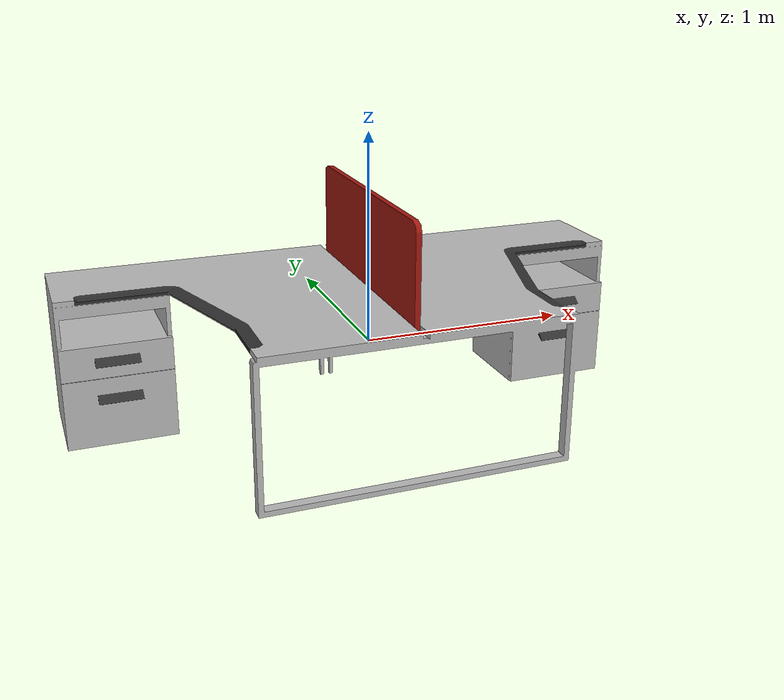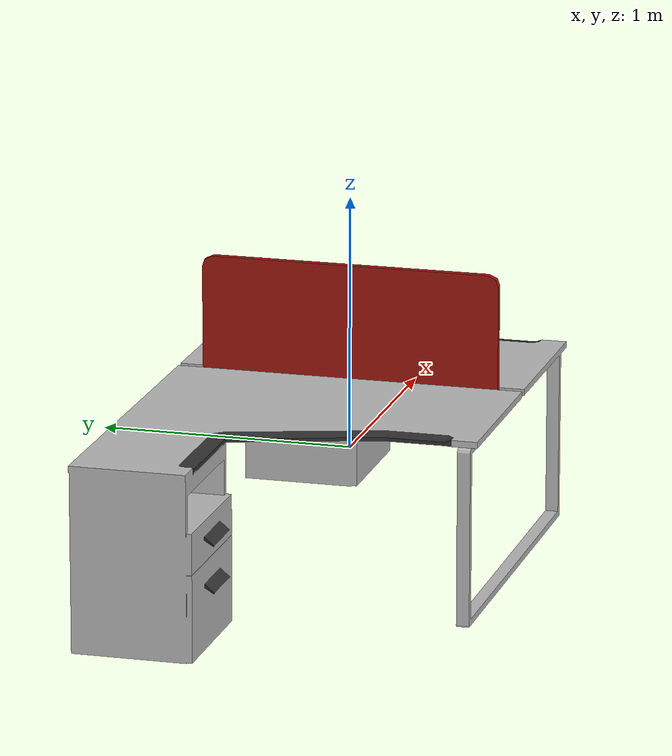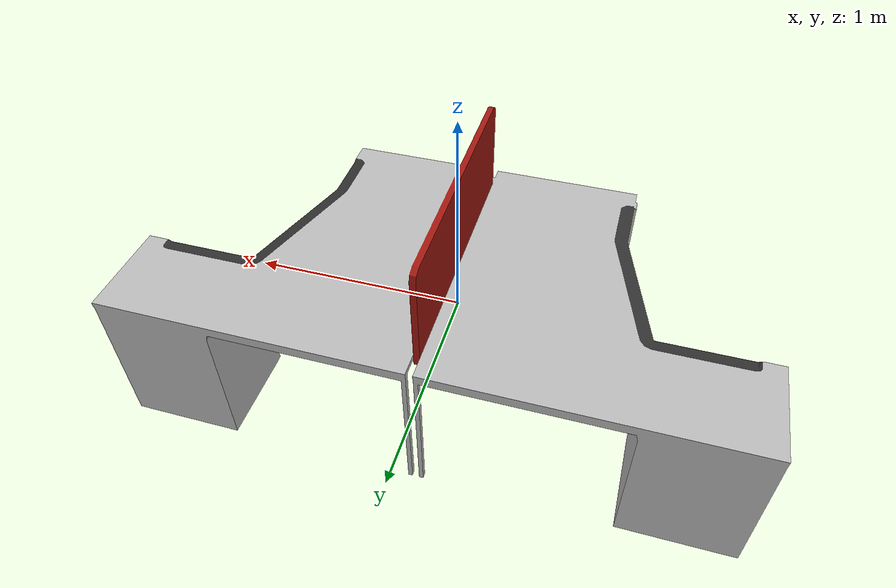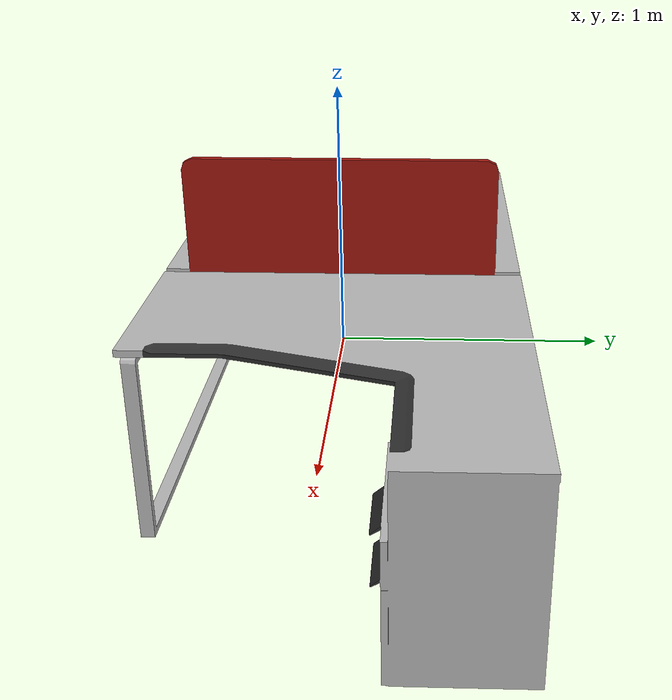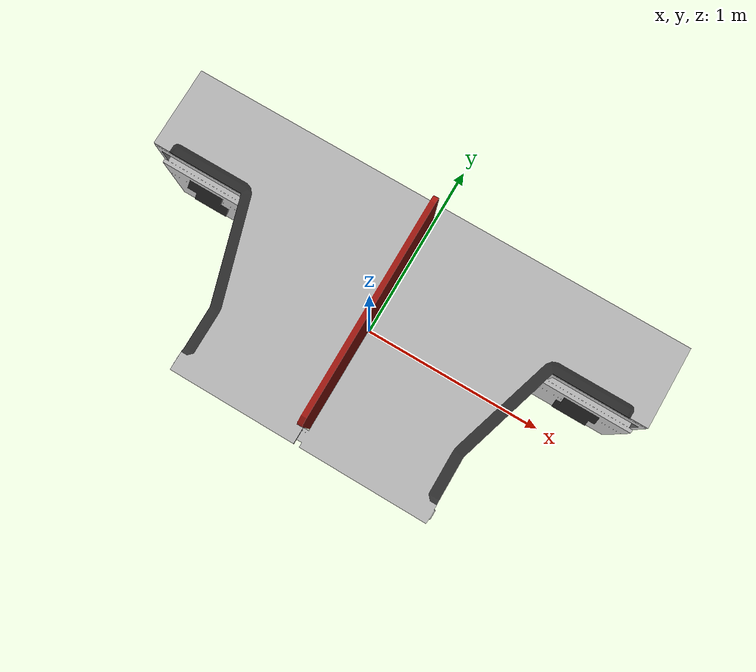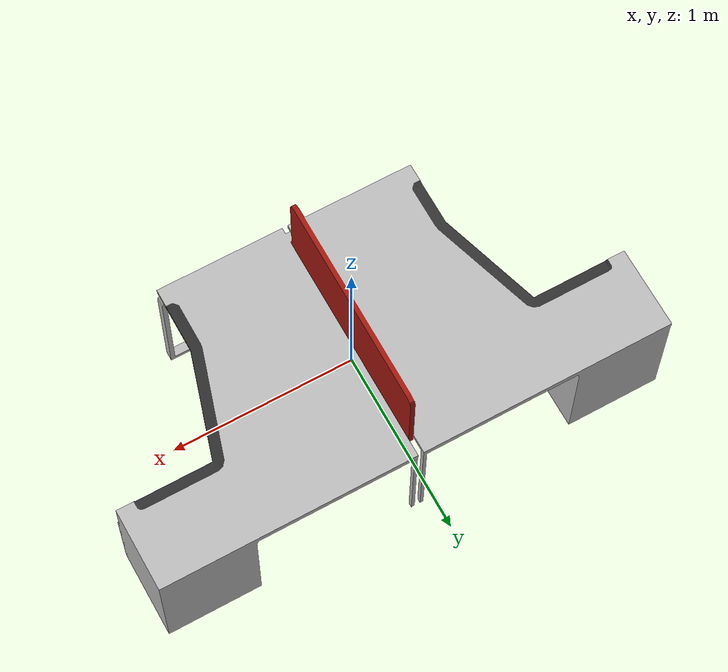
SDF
<?xml version='1.0'?>
<sdf version='1.5'>
    <model name="414_double_table">
        <pose>0 0 0 0 0 0</pose>
        <static>false</static>
        <link name='model_body'>
            <visual name="visual">
                <geometry>
                    <mesh>
                        <uri>model://rs_gazebo/meshes/ss_hq4/414_double_table/414_double_table_visual.dae</uri>
                        <scale>1 1 1</scale>
                    </mesh>
                </geometry>
            </visual>

            <collision name="collision">
                <geometry>
                    <mesh>
                        <uri>model://rs_gazebo/meshes/ss_hq4/414_double_table/414_double_table_collision.stl</uri>
                        <scale>1 1 1</scale>
                    </mesh>
                </geometry>
            </collision>

            <inertial>
                <pose> 0 0 0 0 0 0</pose>
                <inertia>
                    <ixx>3.68333333333</ixx>
                    <ixy>0</ixy>
                    <ixz>0</ixz>
                    <iyy>12.0133333333</iyy>
                    <iyz>0</iyz>
                    <izz>13.8833333333</izz>
                </inertia>
                <mass>17.0</mass>
            </inertial>
        </link>
    </model>
</sdf>
